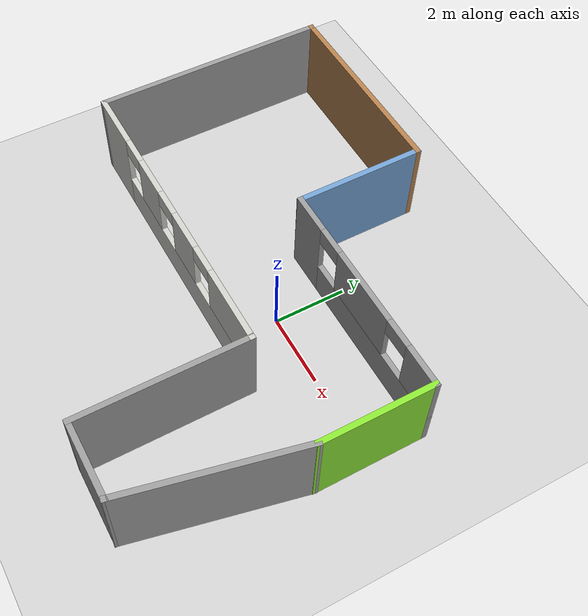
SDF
<sdf version="1.6">
 <world name="default">
  <light name="sun" type="directional">
   <pose>0 0 10 0 -0 0</pose>
   <diffuse>0.8 0.8 0.8 1</diffuse>
   <specular>0.2 0.2 0.2 1</specular>
   <attenuation>
    <range>1000</range>
    <constant>0.9</constant>
    <linear>0.01</linear>
    <quadratic>0.001</quadratic>
   </attenuation>
   <direction>-0.5 0.1 -0.9</direction>
  </light>
  <model name="ground_plane">
   <static>1</static>
   <link name="link">
    <collision name="collision">
     <geometry><plane><normal>0 0 1</normal><size>100 100</size></plane></geometry>
     <surface>
      <contact><collide_bitmask>65535</collide_bitmask></contact>
      <friction><ode><mu>100</mu><mu2>50</mu2></ode></friction>
     </surface>
    </collision>
    <visual name="visual">
     <cast_shadows>0</cast_shadows>
     <geometry><plane><normal>0 0 1</normal><size>100 100</size></plane></geometry>
     <material>
      <script><uri>file://media/materials/scripts/gazebo.material</uri><name>Gazebo/Grey</name></script>
     </material>
    </visual>
   </link>
  </model>
  <gravity>0 0 -9.8</gravity>
  <magnetic_field>6e-06 2.3e-05 -4.2e-05</magnetic_field>
  <atmosphere type="adiabatic"/>
  <physics name="default_physics" default="0" type="ode">
   <max_step_size>0.001</max_step_size>
   <real_time_factor>1</real_time_factor>
   <real_time_update_rate>1000</real_time_update_rate>
  </physics>
  <scene><ambient>0.4 0.4 0.4 1</ambient><background>0.7 0.7 0.7 1</background><shadows>1</shadows></scene>
  <audio><device>default</device></audio>
  <spherical_coordinates>
   <surface_model>EARTH_WGS84</surface_model>
   <latitude_deg>0</latitude_deg>
   <longitude_deg>0</longitude_deg>
   <elevation>0</elevation>
   <heading_deg>0</heading_deg>
  </spherical_coordinates>
  <model name="Temp_1">
   <pose>-1.24276 -0.507242 0 0 -0 0</pose>
   <link name="Wall_0">
    <pose>2.74276 2.00724 0 0 -0 0</pose>
    <visual name="Wall_0_Visual_0">
     <pose>-2.4875 0 1.25 0 -0 0</pose>
     <geometry><box><size>1.175 0.15 2.5</size></box></geometry>
     <material>
      <script><uri>file://media/materials/scripts/gazebo.material</uri><name>Gazebo/Grey</name></script>
      <ambient>1 1 1 1</ambient>
     </material>
     <meta><layer>0</layer></meta>
    </visual>
    <collision name="Wall_0_Collision_0">
     <geometry><box><size>1.175 0.15 2.5</size></box></geometry>
     <pose>-2.4875 0 1.25 0 -0 0</pose>
    </collision>
    <visual name="Wall_0_Visual_1">
     <pose>0.5875 0 0.5 0 -0 0</pose>
     <geometry><box><size>4.975 0.15 1</size></box></geometry>
     <material>
      <script><uri>file://media/materials/scripts/gazebo.material</uri><name>Gazebo/Grey</name></script>
      <ambient>1 1 1 1</ambient>
     </material>
     <meta><layer>0</layer></meta>
    </visual>
    <collision name="Wall_0_Collision_1">
     <geometry><box><size>4.975 0.15 1</size></box></geometry>
     <pose>0.5875 0 0.5 0 -0 0</pose>
    </collision>
    <visual name="Wall_0_Visual_2">
     <pose>-0 0 1.75 0 -0 0</pose>
     <geometry><box><size>2.2 0.15 1.5</size></box></geometry>
     <material>
      <script><uri>file://media/materials/scripts/gazebo.material</uri><name>Gazebo/Grey</name></script>
      <ambient>1 1 1 1</ambient>
     </material>
     <meta><layer>0</layer></meta>
    </visual>
    <collision name="Wall_0_Collision_2">
     <geometry><box><size>2.2 0.15 1.5</size></box></geometry>
     <pose>-0 0 1.75 0 -0 0</pose>
    </collision>
    <visual name="Wall_0_Visual_3">
     <pose>2.4875 0 1.75 0 -0 0</pose>
     <geometry><box><size>1.175 0.15 1.5</size></box></geometry>
     <material>
      <script><uri>file://media/materials/scripts/gazebo.material</uri><name>Gazebo/Grey</name></script>
      <ambient>1 1 1 1</ambient>
     </material>
     <meta><layer>0</layer></meta>
    </visual>
    <collision name="Wall_0_Collision_3">
     <geometry><box><size>1.175 0.15 1.5</size></box></geometry>
     <pose>2.4875 0 1.75 0 -0 0</pose>
    </collision>
    <visual name="Wall_0_Visual_4">
     <pose>-1.5 0 2.25 0 -0 0</pose>
     <geometry><box><size>0.8 0.15 0.5</size></box></geometry>
     <material>
      <script><uri>file://media/materials/scripts/gazebo.material</uri><name>Gazebo/Grey</name></script>
      <ambient>1 1 1 1</ambient>
     </material>
     <meta><layer>0</layer></meta>
    </visual>
    <collision name="Wall_0_Collision_4">
     <geometry><box><size>0.8 0.15 0.5</size></box></geometry>
     <pose>-1.5 0 2.25 0 -0 0</pose>
    </collision>
    <visual name="Wall_0_Visual_5">
     <pose>1.5 0 2.25 0 -0 0</pose>
     <geometry><box><size>0.8 0.15 0.5</size></box></geometry>
     <material>
      <script><uri>file://media/materials/scripts/gazebo.material</uri><name>Gazebo/Grey</name></script>
      <ambient>1 1 1 1</ambient>
     </material>
     <meta><layer>0</layer></meta>
    </visual>
    <collision name="Wall_0_Collision_5">
     <geometry><box><size>0.8 0.15 0.5</size></box></geometry>
     <pose>1.5 0 2.25 0 -0 0</pose>
    </collision>
   </link>
   <link name="Wall_10">
    <collision name="Wall_10_Collision">
     <geometry><box><size>5.65 0.15 2.5</size></box></geometry>
     <pose>0 0 1.25 0 -0 0</pose>
    </collision>
    <visual name="Wall_10_Visual">
     <pose>0 0 1.25 0 -0 0</pose>
     <geometry><box><size>5.65 0.15 2.5</size></box></geometry>
     <material>
      <script><uri>file://media/materials/scripts/gazebo.material</uri><name>Gazebo/Wood</name></script>
      <ambient>1 1 1 1</ambient>
     </material>
     <meta><layer>0</layer></meta>
    </visual>
    <pose>-3.00724 5.50724 0 0 -0 3.14159</pose>
   </link>
   <link name="Wall_11">
    <collision name="Wall_11_Collision">
     <geometry><box><size>6.65 0.15 2.5</size></box></geometry>
     <pose>0 0 1.25 0 -0 0</pose>
    </collision>
    <visual name="Wall_11_Visual">
     <pose>0 0 1.25 0 -0 0</pose>
     <geometry><box><size>6.65 0.15 2.5</size></box></geometry>
     <material>
      <script><uri>file://media/materials/scripts/gazebo.material</uri><name>Gazebo/Grey</name></script>
      <ambient>1 1 1 1</ambient>
     </material>
     <meta><layer>0</layer></meta>
    </visual>
    <pose>-5.75724 2.25724 0 0 -0 -1.5708</pose>
   </link>
   <link name="Wall_2">
    <pose>-1.50724 -0.992758 0 0 -0 0</pose>
    <visual name="Wall_2_Visual_0">
     <pose>-3.48572 0 1.25 0 -0 0</pose>
     <geometry><box><size>1.67857 0.15 2.5</size></box></geometry>
     <material>
      <script><uri>file://media/materials/scripts/gazebo.material</uri><name>Gazebo/CeilingTiled</name></script>
      <ambient>1 1 1 1</ambient>
     </material>
     <meta><layer>0</layer></meta>
    </visual>
    <collision name="Wall_2_Collision_0">
     <geometry><box><size>1.67857 0.15 2.5</size></box></geometry>
     <pose>-3.48572 0 1.25 0 -0 0</pose>
    </collision>
    <visual name="Wall_2_Visual_1">
     <pose>0.839284 0 0.5 0 -0 0</pose>
     <geometry><box><size>6.97143 0.15 1</size></box></geometry>
     <material>
      <script><uri>file://media/materials/scripts/gazebo.material</uri><name>Gazebo/CeilingTiled</name></script>
      <ambient>1 1 1 1</ambient>
     </material>
     <meta><layer>0</layer></meta>
    </visual>
    <collision name="Wall_2_Collision_1">
     <geometry><box><size>6.97143 0.15 1</size></box></geometry>
     <pose>0.839284 0 0.5 0 -0 0</pose>
    </collision>
    <visual name="Wall_2_Visual_2">
     <pose>-1.24822 0 1.75 0 -0 0</pose>
     <geometry><box><size>1.19643 0.15 1.5</size></box></geometry>
     <material>
      <script><uri>file://media/materials/scripts/gazebo.material</uri><name>Gazebo/CeilingTiled</name></script>
      <ambient>1 1 1 1</ambient>
     </material>
     <meta><layer>0</layer></meta>
    </visual>
    <collision name="Wall_2_Collision_2">
     <geometry><box><size>1.19643 0.15 1.5</size></box></geometry>
     <pose>-1.24822 0 1.75 0 -0 0</pose>
    </collision>
    <visual name="Wall_2_Visual_3">
     <pose>0.745204 0 1.75 0 -0 0</pose>
     <geometry><box><size>1.19041 0.15 1.5</size></box></geometry>
     <material>
      <script><uri>file://media/materials/scripts/gazebo.material</uri><name>Gazebo/CeilingTiled</name></script>
      <ambient>1 1 1 1</ambient>
     </material>
     <meta><layer>0</layer></meta>
    </visual>
    <collision name="Wall_2_Collision_3">
     <geometry><box><size>1.19041 0.15 1.5</size></box></geometry>
     <pose>0.745204 0 1.75 0 -0 0</pose>
    </collision>
    <visual name="Wall_2_Visual_4">
     <pose>3.2327 0 1.75 0 -0 0</pose>
     <geometry><box><size>2.18459 0.15 1.5</size></box></geometry>
     <material>
      <script><uri>file://media/materials/scripts/gazebo.material</uri><name>Gazebo/CeilingTiled</name></script>
      <ambient>1 1 1 1</ambient>
     </material>
     <meta><layer>0</layer></meta>
    </visual>
    <collision name="Wall_2_Collision_4">
     <geometry><box><size>2.18459 0.15 1.5</size></box></geometry>
     <pose>3.2327 0 1.75 0 -0 0</pose>
    </collision>
    <visual name="Wall_2_Visual_5">
     <pose>-2.24643 0 2.25 0 -0 0</pose>
     <geometry><box><size>0.8 0.15 0.5</size></box></geometry>
     <material>
      <script><uri>file://media/materials/scripts/gazebo.material</uri><name>Gazebo/CeilingTiled</name></script>
      <ambient>1 1 1 1</ambient>
     </material>
     <meta><layer>0</layer></meta>
    </visual>
    <collision name="Wall_2_Collision_5">
     <geometry><box><size>0.8 0.15 0.5</size></box></geometry>
     <pose>-2.24643 0 2.25 0 -0 0</pose>
    </collision>
    <visual name="Wall_2_Visual_6">
     <pose>-0.25 0 2.25 0 -0 0</pose>
     <geometry><box><size>0.8 0.15 0.5</size></box></geometry>
     <material>
      <script><uri>file://media/materials/scripts/gazebo.material</uri><name>Gazebo/CeilingTiled</name></script>
      <ambient>1 1 1 1</ambient>
     </material>
     <meta><layer>0</layer></meta>
    </visual>
    <collision name="Wall_2_Collision_6">
     <geometry><box><size>0.8 0.15 0.5</size></box></geometry>
     <pose>-0.25 0 2.25 0 -0 0</pose>
    </collision>
    <visual name="Wall_2_Visual_7">
     <pose>1.74041 0 2.25 0 -0 0</pose>
     <geometry><box><size>0.8 0.15 0.5</size></box></geometry>
     <material>
      <script><uri>file://media/materials/scripts/gazebo.material</uri><name>Gazebo/CeilingTiled</name></script>
      <ambient>1 1 1 1</ambient>
     </material>
     <meta><layer>0</layer></meta>
    </visual>
    <collision name="Wall_2_Collision_7">
     <geometry><box><size>0.8 0.15 0.5</size></box></geometry>
     <pose>1.74041 0 2.25 0 -0 0</pose>
    </collision>
   </link>
   <link name="Wall_4">
    <collision name="Wall_4_Collision">
     <geometry><box><size>4.65 0.15 2.5</size></box></geometry>
     <pose>0 0 1.25 0 -0 0</pose>
    </collision>
    <visual name="Wall_4_Visual">
     <pose>0 0 1.25 0 -0 0</pose>
     <geometry><box><size>4.65 0.15 2.5</size></box></geometry>
     <material>
      <script><uri>file://media/materials/scripts/gazebo.material</uri><name>Gazebo/Grey</name></script>
      <ambient>1 1 1 1</ambient>
     </material>
     <meta><layer>0</layer></meta>
    </visual>
    <pose>2.74276 -3.24276 0 0 -0 -1.5708</pose>
   </link>
   <link name="Wall_5">
    <collision name="Wall_5_Collision">
     <geometry><box><size>2.15 0.15 2.5</size></box></geometry>
     <pose>0 0 1.25 0 -0 0</pose>
    </collision>
    <visual name="Wall_5_Visual">
     <pose>0 0 1.25 0 -0 0</pose>
     <geometry><box><size>2.15 0.15 2.5</size></box></geometry>
     <material>
      <script><uri>file://media/materials/scripts/gazebo.material</uri><name>Gazebo/Grey</name></script>
      <ambient>1 1 1 1</ambient>
     </material>
     <meta><layer>0</layer></meta>
    </visual>
    <pose>3.74276 -5.49276 0 0 -0 0</pose>
   </link>
   <link name="Wall_6">
    <collision name="Wall_6_Collision">
     <geometry><box><size>4.75977 0.15 2.5</size></box></geometry>
     <pose>0 0 1.25 0 -0 0</pose>
    </collision>
    <visual name="Wall_6_Visual">
     <pose>0 0 1.25 0 -0 0</pose>
     <geometry><box><size>4.75977 0.15 2.5</size></box></geometry>
     <material>
      <script><uri>file://media/materials/scripts/gazebo.material</uri><name>Gazebo/Grey</name></script>
      <ambient>1 1 1 1</ambient>
     </material>
     <meta><layer>0</layer></meta>
    </visual>
    <pose>5.24276 -3.24276 0 0 -0 1.35213</pose>
   </link>
   <link name="Wall_7">
    <collision name="Wall_7_Collision">
     <geometry><box><size>3.15 0.15 2.5</size></box></geometry>
     <pose>0 0 1.25 0 -0 0</pose>
    </collision>
    <visual name="Wall_7_Visual">
     <pose>0 0 1.25 0 -0 0</pose>
     <geometry><box><size>3.15 0.15 2.5</size></box></geometry>
     <material>
      <script><uri>file://media/materials/scripts/gazebo.material</uri><name>Gazebo/Grey</name></script>
      <ambient>0.541176 0.886275 0.203922 1</ambient>
     </material>
     <meta><layer>0</layer></meta>
    </visual>
    <pose>5.74276 0.507242 0 0 -0 1.5708</pose>
   </link>
   <link name="Wall_9">
    <collision name="Wall_9_Collision">
     <geometry><box><size>3.65 0.15 2.5</size></box></geometry>
     <pose>0 0 1.25 0 -0 0</pose>
    </collision>
    <visual name="Wall_9_Visual">
     <pose>0 0 1.25 0 -0 0</pose>
     <geometry><box><size>3.65 0.15 2.5</size></box></geometry>
     <material>
      <script><uri>file://media/materials/scripts/gazebo.material</uri><name>Gazebo/Grey</name></script>
      <ambient>0.447059 0.623529 0.811765 1</ambient>
     </material>
     <meta><layer>0</layer></meta>
    </visual>
    <pose>-0.257242 3.75724 0 0 -0 1.5708</pose>
   </link>
   <static>1</static>
  </model>
 </world>
</sdf>
